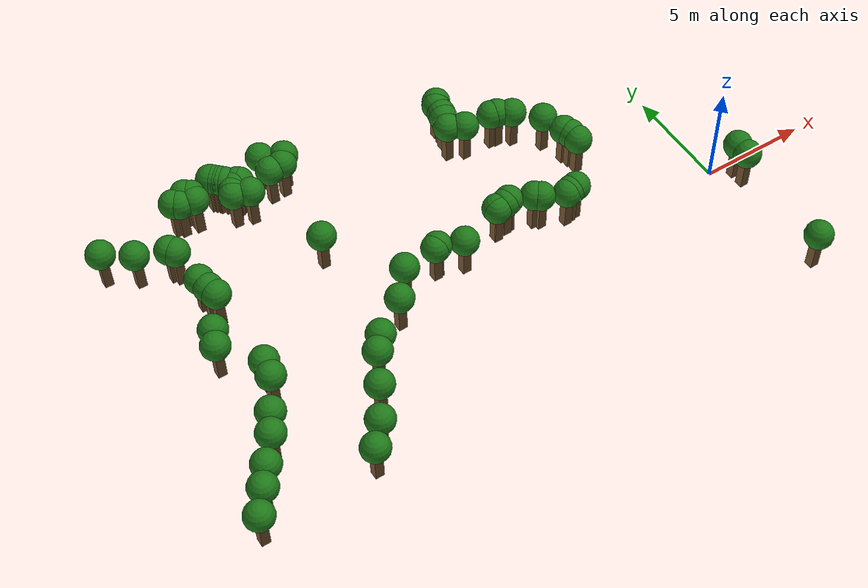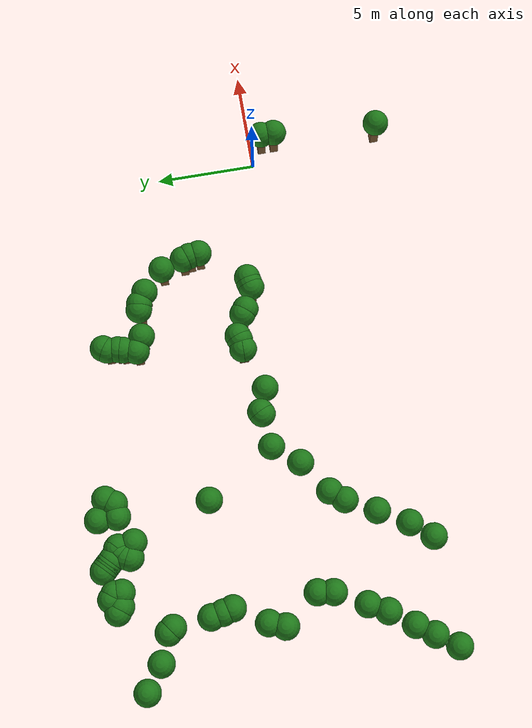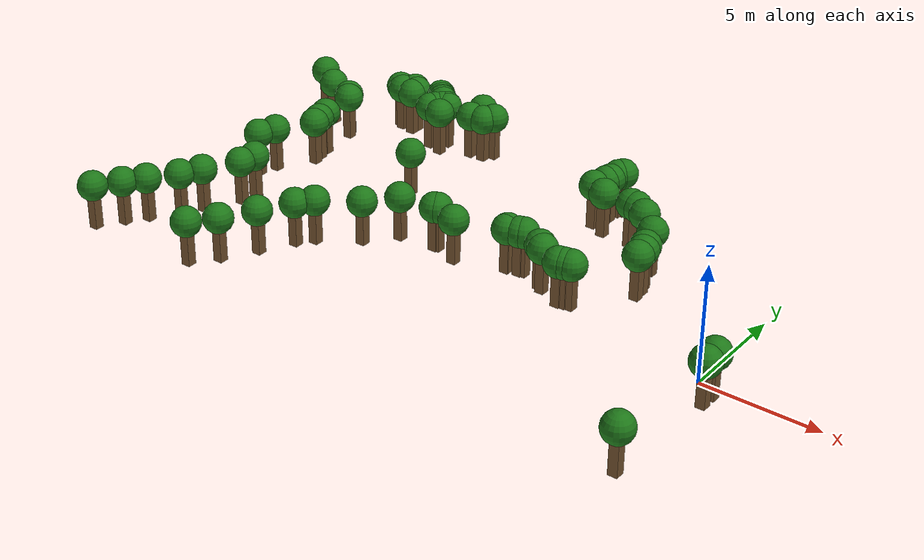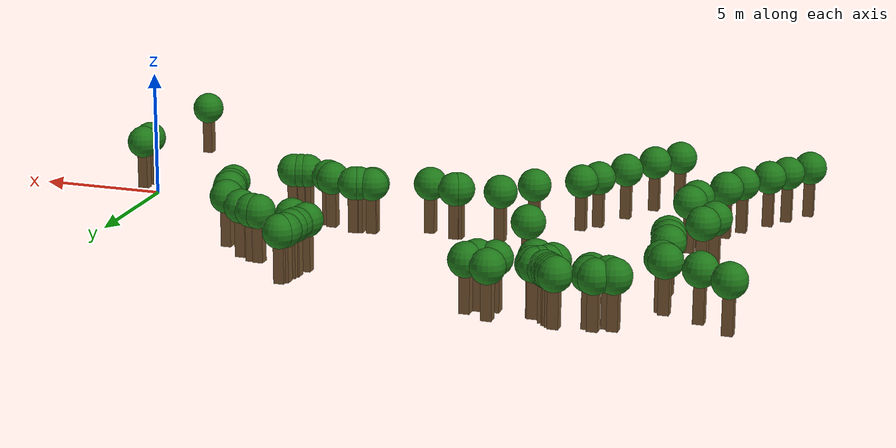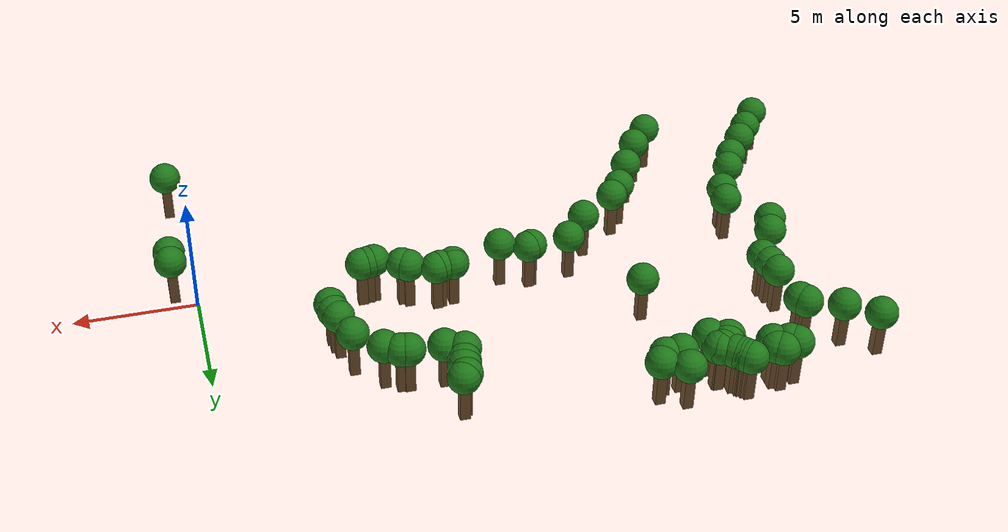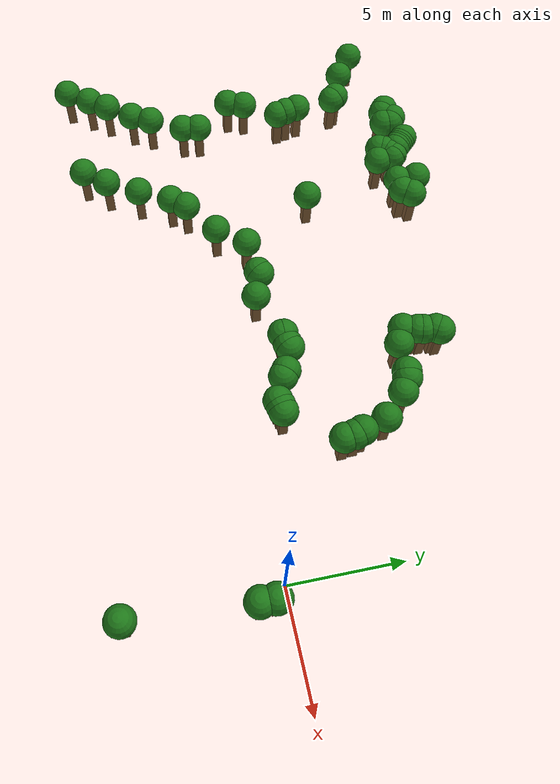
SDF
<sdf version="1.8">
 <model name="bush_trail_nav_walls">
  <static>true</static>
  <link name="trail_wall_151">
   <pose>-19.619 10.352 0.750 0 0 0</pose>
   <collision name="c"><geometry><box><size>0.400 0.400 1.500</size></box></geometry></collision>
   <visual name="v">
    <geometry><box><size>0.400 0.400 1.500</size></box></geometry>
    <material><ambient>0.35 0.25 0.15 1</ambient><diffuse>0.45 0.32 0.18 1</diffuse></material>
   </visual>
   <visual name="leaves">
    <pose>0 0 1.200 0 0 0</pose>
    <geometry><sphere><radius>0.650</radius></sphere></geometry>
    <material><ambient>0.08 0.35 0.08 1</ambient><diffuse>0.12 0.48 0.10 1</diffuse></material>
   </visual>
  </link>
  <link name="trail_wall_152">
   <pose>-17.214 10.293 0.750 0 0 0</pose>
   <collision name="c"><geometry><box><size>0.400 0.400 1.500</size></box></geometry></collision>
   <visual name="v">
    <geometry><box><size>0.400 0.400 1.500</size></box></geometry>
    <material><ambient>0.35 0.25 0.15 1</ambient><diffuse>0.45 0.32 0.18 1</diffuse></material>
   </visual>
   <visual name="leaves">
    <pose>0 0 1.200 0 0 0</pose>
    <geometry><sphere><radius>0.650</radius></sphere></geometry>
    <material><ambient>0.08 0.35 0.08 1</ambient><diffuse>0.12 0.48 0.10 1</diffuse></material>
   </visual>
  </link>
  <link name="trail_wall_153">
   <pose>-19.501 10.235 0.750 0 0 0</pose>
   <collision name="c"><geometry><box><size>0.400 0.400 1.500</size></box></geometry></collision>
   <visual name="v">
    <geometry><box><size>0.400 0.400 1.500</size></box></geometry>
    <material><ambient>0.35 0.25 0.15 1</ambient><diffuse>0.45 0.32 0.18 1</diffuse></material>
   </visual>
   <visual name="leaves">
    <pose>0 0 1.200 0 0 0</pose>
    <geometry><sphere><radius>0.650</radius></sphere></geometry>
    <material><ambient>0.08 0.35 0.08 1</ambient><diffuse>0.12 0.48 0.10 1</diffuse></material>
   </visual>
  </link>
  <link name="trail_wall_154">
   <pose>-20.968 10.176 0.750 0 0 0</pose>
   <collision name="c"><geometry><box><size>0.400 0.400 1.500</size></box></geometry></collision>
   <visual name="v">
    <geometry><box><size>0.400 0.400 1.500</size></box></geometry>
    <material><ambient>0.35 0.25 0.15 1</ambient><diffuse>0.45 0.32 0.18 1</diffuse></material>
   </visual>
   <visual name="leaves">
    <pose>0 0 1.200 0 0 0</pose>
    <geometry><sphere><radius>0.650</radius></sphere></geometry>
    <material><ambient>0.08 0.35 0.08 1</ambient><diffuse>0.12 0.48 0.10 1</diffuse></material>
   </visual>
  </link>
  <link name="trail_wall_155">
   <pose>-19.384 10.117 0.750 0 0 0</pose>
   <collision name="c"><geometry><box><size>0.400 0.400 1.500</size></box></geometry></collision>
   <visual name="v">
    <geometry><box><size>0.400 0.400 1.500</size></box></geometry>
    <material><ambient>0.35 0.25 0.15 1</ambient><diffuse>0.45 0.32 0.18 1</diffuse></material>
   </visual>
   <visual name="leaves">
    <pose>0 0 1.200 0 0 0</pose>
    <geometry><sphere><radius>0.650</radius></sphere></geometry>
    <material><ambient>0.08 0.35 0.08 1</ambient><diffuse>0.12 0.48 0.10 1</diffuse></material>
   </visual>
  </link>
  <link name="trail_wall_156">
   <pose>-19.326 10.059 0.750 0 0 0</pose>
   <collision name="c"><geometry><box><size>0.400 0.400 1.500</size></box></geometry></collision>
   <visual name="v">
    <geometry><box><size>0.400 0.400 1.500</size></box></geometry>
    <material><ambient>0.35 0.25 0.15 1</ambient><diffuse>0.45 0.32 0.18 1</diffuse></material>
   </visual>
   <visual name="leaves">
    <pose>0 0 1.200 0 0 0</pose>
    <geometry><sphere><radius>0.650</radius></sphere></geometry>
    <material><ambient>0.08 0.35 0.08 1</ambient><diffuse>0.12 0.48 0.10 1</diffuse></material>
   </visual>
  </link>
  <link name="trail_wall_157">
   <pose>-20.733 10.000 0.750 0 0 0</pose>
   <collision name="c"><geometry><box><size>0.400 0.400 1.500</size></box></geometry></collision>
   <visual name="v">
    <geometry><box><size>0.400 0.400 1.500</size></box></geometry>
    <material><ambient>0.35 0.25 0.15 1</ambient><diffuse>0.45 0.32 0.18 1</diffuse></material>
   </visual>
   <visual name="leaves">
    <pose>0 0 1.200 0 0 0</pose>
    <geometry><sphere><radius>0.650</radius></sphere></geometry>
    <material><ambient>0.08 0.35 0.08 1</ambient><diffuse>0.12 0.48 0.10 1</diffuse></material>
   </visual>
  </link>
  <link name="trail_wall_158">
   <pose>-21.613 9.941 0.750 0 0 0</pose>
   <collision name="c"><geometry><box><size>0.400 0.400 1.500</size></box></geometry></collision>
   <visual name="v">
    <geometry><box><size>0.400 0.400 1.500</size></box></geometry>
    <material><ambient>0.35 0.25 0.15 1</ambient><diffuse>0.45 0.32 0.18 1</diffuse></material>
   </visual>
   <visual name="leaves">
    <pose>0 0 1.200 0 0 0</pose>
    <geometry><sphere><radius>0.650</radius></sphere></geometry>
    <material><ambient>0.08 0.35 0.08 1</ambient><diffuse>0.12 0.48 0.10 1</diffuse></material>
   </visual>
  </link>
  <link name="trail_wall_159">
   <pose>-19.150 9.883 0.750 0 0 0</pose>
   <collision name="c"><geometry><box><size>0.400 0.400 1.500</size></box></geometry></collision>
   <visual name="v">
    <geometry><box><size>0.400 0.400 1.500</size></box></geometry>
    <material><ambient>0.35 0.25 0.15 1</ambient><diffuse>0.45 0.32 0.18 1</diffuse></material>
   </visual>
   <visual name="leaves">
    <pose>0 0 1.200 0 0 0</pose>
    <geometry><sphere><radius>0.650</radius></sphere></geometry>
    <material><ambient>0.08 0.35 0.08 1</ambient><diffuse>0.12 0.48 0.10 1</diffuse></material>
   </visual>
  </link>
  <link name="trail_wall_160">
   <pose>-16.276 9.824 0.750 0 0 0</pose>
   <collision name="c"><geometry><box><size>0.400 0.400 1.500</size></box></geometry></collision>
   <visual name="v">
    <geometry><box><size>0.400 0.400 1.500</size></box></geometry>
    <material><ambient>0.35 0.25 0.15 1</ambient><diffuse>0.45 0.32 0.18 1</diffuse></material>
   </visual>
   <visual name="leaves">
    <pose>0 0 1.200 0 0 0</pose>
    <geometry><sphere><radius>0.650</radius></sphere></geometry>
    <material><ambient>0.08 0.35 0.08 1</ambient><diffuse>0.12 0.48 0.10 1</diffuse></material>
   </visual>
  </link>
  <link name="trail_wall_161">
   <pose>-21.378 9.765 0.750 0 0 0</pose>
   <collision name="c"><geometry><box><size>0.400 0.400 1.500</size></box></geometry></collision>
   <visual name="v">
    <geometry><box><size>0.400 0.400 1.500</size></box></geometry>
    <material><ambient>0.35 0.25 0.15 1</ambient><diffuse>0.45 0.32 0.18 1</diffuse></material>
   </visual>
   <visual name="leaves">
    <pose>0 0 1.200 0 0 0</pose>
    <geometry><sphere><radius>0.650</radius></sphere></geometry>
    <material><ambient>0.08 0.35 0.08 1</ambient><diffuse>0.12 0.48 0.10 1</diffuse></material>
   </visual>
  </link>
  <link name="trail_wall_164">
   <pose>-20.733 9.648 0.750 0 0 0</pose>
   <collision name="c"><geometry><box><size>0.400 0.400 1.500</size></box></geometry></collision>
   <visual name="v">
    <geometry><box><size>0.400 0.400 1.500</size></box></geometry>
    <material><ambient>0.35 0.25 0.15 1</ambient><diffuse>0.45 0.32 0.18 1</diffuse></material>
   </visual>
   <visual name="leaves">
    <pose>0 0 1.200 0 0 0</pose>
    <geometry><sphere><radius>0.650</radius></sphere></geometry>
    <material><ambient>0.08 0.35 0.08 1</ambient><diffuse>0.12 0.48 0.10 1</diffuse></material>
   </visual>
  </link>
  <link name="trail_wall_165">
   <pose>-18.680 9.589 0.750 0 0 0</pose>
   <collision name="c"><geometry><box><size>0.400 0.400 1.500</size></box></geometry></collision>
   <visual name="v">
    <geometry><box><size>0.400 0.400 1.500</size></box></geometry>
    <material><ambient>0.35 0.25 0.15 1</ambient><diffuse>0.45 0.32 0.18 1</diffuse></material>
   </visual>
   <visual name="leaves">
    <pose>0 0 1.200 0 0 0</pose>
    <geometry><sphere><radius>0.650</radius></sphere></geometry>
    <material><ambient>0.08 0.35 0.08 1</ambient><diffuse>0.12 0.48 0.10 1</diffuse></material>
   </visual>
  </link>
  <link name="trail_wall_166">
   <pose>-18.622 9.531 0.750 0 0 0</pose>
   <collision name="c"><geometry><box><size>0.400 0.400 1.500</size></box></geometry></collision>
   <visual name="v">
    <geometry><box><size>0.400 0.400 1.500</size></box></geometry>
    <material><ambient>0.35 0.25 0.15 1</ambient><diffuse>0.45 0.32 0.18 1</diffuse></material>
   </visual>
   <visual name="leaves">
    <pose>0 0 1.200 0 0 0</pose>
    <geometry><sphere><radius>0.650</radius></sphere></geometry>
    <material><ambient>0.08 0.35 0.08 1</ambient><diffuse>0.12 0.48 0.10 1</diffuse></material>
   </visual>
  </link>
  <link name="trail_wall_167">
   <pose>-18.856 9.472 0.750 0 0 0</pose>
   <collision name="c"><geometry><box><size>0.400 0.400 1.500</size></box></geometry></collision>
   <visual name="v">
    <geometry><box><size>0.400 0.400 1.500</size></box></geometry>
    <material><ambient>0.35 0.25 0.15 1</ambient><diffuse>0.45 0.32 0.18 1</diffuse></material>
   </visual>
   <visual name="leaves">
    <pose>0 0 1.200 0 0 0</pose>
    <geometry><sphere><radius>0.650</radius></sphere></geometry>
    <material><ambient>0.08 0.35 0.08 1</ambient><diffuse>0.12 0.48 0.10 1</diffuse></material>
   </visual>
  </link>
  <link name="trail_wall_169">
   <pose>-16.569 9.413 0.750 0 0 0</pose>
   <collision name="c"><geometry><box><size>0.400 0.400 1.500</size></box></geometry></collision>
   <visual name="v">
    <geometry><box><size>0.400 0.400 1.500</size></box></geometry>
    <material><ambient>0.35 0.25 0.15 1</ambient><diffuse>0.45 0.32 0.18 1</diffuse></material>
   </visual>
   <visual name="leaves">
    <pose>0 0 1.200 0 0 0</pose>
    <geometry><sphere><radius>0.650</radius></sphere></geometry>
    <material><ambient>0.08 0.35 0.08 1</ambient><diffuse>0.12 0.48 0.10 1</diffuse></material>
   </visual>
  </link>
  <link name="trail_wall_170">
   <pose>-17.214 9.355 0.750 0 0 0</pose>
   <collision name="c"><geometry><box><size>0.400 0.400 1.500</size></box></geometry></collision>
   <visual name="v">
    <geometry><box><size>0.400 0.400 1.500</size></box></geometry>
    <material><ambient>0.35 0.25 0.15 1</ambient><diffuse>0.45 0.32 0.18 1</diffuse></material>
   </visual>
   <visual name="leaves">
    <pose>0 0 1.200 0 0 0</pose>
    <geometry><sphere><radius>0.650</radius></sphere></geometry>
    <material><ambient>0.08 0.35 0.08 1</ambient><diffuse>0.12 0.48 0.10 1</diffuse></material>
   </visual>
  </link>
  <link name="trail_wall_171">
   <pose>-19.091 9.238 0.750 0 0 0</pose>
   <collision name="c"><geometry><box><size>0.400 0.400 1.500</size></box></geometry></collision>
   <visual name="v">
    <geometry><box><size>0.400 0.400 1.500</size></box></geometry>
    <material><ambient>0.35 0.25 0.15 1</ambient><diffuse>0.45 0.32 0.18 1</diffuse></material>
   </visual>
   <visual name="leaves">
    <pose>0 0 1.200 0 0 0</pose>
    <geometry><sphere><radius>0.650</radius></sphere></geometry>
    <material><ambient>0.08 0.35 0.08 1</ambient><diffuse>0.12 0.48 0.10 1</diffuse></material>
   </visual>
  </link>
  <link name="trail_wall_172">
   <pose>-25.425 9.120 0.750 0 0 0</pose>
   <collision name="c"><geometry><box><size>0.400 0.400 1.500</size></box></geometry></collision>
   <visual name="v">
    <geometry><box><size>0.400 0.400 1.500</size></box></geometry>
    <material><ambient>0.35 0.25 0.15 1</ambient><diffuse>0.45 0.32 0.18 1</diffuse></material>
   </visual>
   <visual name="leaves">
    <pose>0 0 1.200 0 0 0</pose>
    <geometry><sphere><radius>0.650</radius></sphere></geometry>
    <material><ambient>0.08 0.35 0.08 1</ambient><diffuse>0.12 0.48 0.10 1</diffuse></material>
   </visual>
  </link>
  <link name="trail_wall_173">
   <pose>-19.208 9.003 0.750 0 0 0</pose>
   <collision name="c"><geometry><box><size>0.400 0.400 1.500</size></box></geometry></collision>
   <visual name="v">
    <geometry><box><size>0.400 0.400 1.500</size></box></geometry>
    <material><ambient>0.35 0.25 0.15 1</ambient><diffuse>0.45 0.32 0.18 1</diffuse></material>
   </visual>
   <visual name="leaves">
    <pose>0 0 1.200 0 0 0</pose>
    <geometry><sphere><radius>0.650</radius></sphere></geometry>
    <material><ambient>0.08 0.35 0.08 1</ambient><diffuse>0.12 0.48 0.10 1</diffuse></material>
   </visual>
  </link>
  <link name="trail_wall_174">
   <pose>-8.944 8.886 0.750 0 0 0</pose>
   <collision name="c"><geometry><box><size>0.400 0.400 1.500</size></box></geometry></collision>
   <visual name="v">
    <geometry><box><size>0.400 0.400 1.500</size></box></geometry>
    <material><ambient>0.35 0.25 0.15 1</ambient><diffuse>0.45 0.32 0.18 1</diffuse></material>
   </visual>
   <visual name="leaves">
    <pose>0 0 1.200 0 0 0</pose>
    <geometry><sphere><radius>0.650</radius></sphere></geometry>
    <material><ambient>0.08 0.35 0.08 1</ambient><diffuse>0.12 0.48 0.10 1</diffuse></material>
   </visual>
  </link>
  <link name="trail_wall_175">
   <pose>-18.504 8.768 0.750 0 0 0</pose>
   <collision name="c"><geometry><box><size>0.400 0.400 1.500</size></box></geometry></collision>
   <visual name="v">
    <geometry><box><size>0.400 0.400 1.500</size></box></geometry>
    <material><ambient>0.35 0.25 0.15 1</ambient><diffuse>0.45 0.32 0.18 1</diffuse></material>
   </visual>
   <visual name="leaves">
    <pose>0 0 1.200 0 0 0</pose>
    <geometry><sphere><radius>0.650</radius></sphere></geometry>
    <material><ambient>0.08 0.35 0.08 1</ambient><diffuse>0.12 0.48 0.10 1</diffuse></material>
   </visual>
  </link>
  <link name="trail_wall_176">
   <pose>-9.062 8.710 0.750 0 0 0</pose>
   <collision name="c"><geometry><box><size>0.400 0.400 1.500</size></box></geometry></collision>
   <visual name="v">
    <geometry><box><size>0.400 0.400 1.500</size></box></geometry>
    <material><ambient>0.35 0.25 0.15 1</ambient><diffuse>0.45 0.32 0.18 1</diffuse></material>
   </visual>
   <visual name="leaves">
    <pose>0 0 1.200 0 0 0</pose>
    <geometry><sphere><radius>0.650</radius></sphere></geometry>
    <material><ambient>0.08 0.35 0.08 1</ambient><diffuse>0.12 0.48 0.10 1</diffuse></material>
   </visual>
  </link>
  <link name="trail_wall_178">
   <pose>-24.252 8.299 0.750 0 0 0</pose>
   <collision name="c"><geometry><box><size>0.400 0.400 1.500</size></box></geometry></collision>
   <visual name="v">
    <geometry><box><size>0.400 0.400 1.500</size></box></geometry>
    <material><ambient>0.35 0.25 0.15 1</ambient><diffuse>0.45 0.32 0.18 1</diffuse></material>
   </visual>
   <visual name="leaves">
    <pose>0 0 1.200 0 0 0</pose>
    <geometry><sphere><radius>0.650</radius></sphere></geometry>
    <material><ambient>0.08 0.35 0.08 1</ambient><diffuse>0.12 0.48 0.10 1</diffuse></material>
   </visual>
  </link>
  <link name="trail_wall_179">
   <pose>-9.120 8.182 0.750 0 0 0</pose>
   <collision name="c"><geometry><box><size>0.400 0.400 1.500</size></box></geometry></collision>
   <visual name="v">
    <geometry><box><size>0.400 0.400 1.500</size></box></geometry>
    <material><ambient>0.35 0.25 0.15 1</ambient><diffuse>0.45 0.32 0.18 1</diffuse></material>
   </visual>
   <visual name="leaves">
    <pose>0 0 1.200 0 0 0</pose>
    <geometry><sphere><radius>0.650</radius></sphere></geometry>
    <material><ambient>0.08 0.35 0.08 1</ambient><diffuse>0.12 0.48 0.10 1</diffuse></material>
   </visual>
  </link>
  <link name="trail_wall_180">
   <pose>-9.179 7.947 0.750 0 0 0</pose>
   <collision name="c"><geometry><box><size>0.400 0.400 1.500</size></box></geometry></collision>
   <visual name="v">
    <geometry><box><size>0.400 0.400 1.500</size></box></geometry>
    <material><ambient>0.35 0.25 0.15 1</ambient><diffuse>0.45 0.32 0.18 1</diffuse></material>
   </visual>
   <visual name="leaves">
    <pose>0 0 1.200 0 0 0</pose>
    <geometry><sphere><radius>0.650</radius></sphere></geometry>
    <material><ambient>0.08 0.35 0.08 1</ambient><diffuse>0.12 0.48 0.10 1</diffuse></material>
   </visual>
  </link>
  <link name="trail_wall_181">
   <pose>-22.903 7.771 0.750 0 0 0</pose>
   <collision name="c"><geometry><box><size>0.400 0.400 1.500</size></box></geometry></collision>
   <visual name="v">
    <geometry><box><size>0.400 0.400 1.500</size></box></geometry>
    <material><ambient>0.35 0.25 0.15 1</ambient><diffuse>0.45 0.32 0.18 1</diffuse></material>
   </visual>
   <visual name="leaves">
    <pose>0 0 1.200 0 0 0</pose>
    <geometry><sphere><radius>0.650</radius></sphere></geometry>
    <material><ambient>0.08 0.35 0.08 1</ambient><diffuse>0.12 0.48 0.10 1</diffuse></material>
   </visual>
  </link>
  <link name="trail_wall_182">
   <pose>-22.727 7.537 0.750 0 0 0</pose>
   <collision name="c"><geometry><box><size>0.400 0.400 1.500</size></box></geometry></collision>
   <visual name="v">
    <geometry><box><size>0.400 0.400 1.500</size></box></geometry>
    <material><ambient>0.35 0.25 0.15 1</ambient><diffuse>0.45 0.32 0.18 1</diffuse></material>
   </visual>
   <visual name="leaves">
    <pose>0 0 1.200 0 0 0</pose>
    <geometry><sphere><radius>0.650</radius></sphere></geometry>
    <material><ambient>0.08 0.35 0.08 1</ambient><diffuse>0.12 0.48 0.10 1</diffuse></material>
   </visual>
  </link>
  <link name="trail_wall_183">
   <pose>-9.355 7.302 0.750 0 0 0</pose>
   <collision name="c"><geometry><box><size>0.400 0.400 1.500</size></box></geometry></collision>
   <visual name="v">
    <geometry><box><size>0.400 0.400 1.500</size></box></geometry>
    <material><ambient>0.35 0.25 0.15 1</ambient><diffuse>0.45 0.32 0.18 1</diffuse></material>
   </visual>
   <visual name="leaves">
    <pose>0 0 1.200 0 0 0</pose>
    <geometry><sphere><radius>0.650</radius></sphere></geometry>
    <material><ambient>0.08 0.35 0.08 1</ambient><diffuse>0.12 0.48 0.10 1</diffuse></material>
   </visual>
  </link>
  <link name="trail_wall_185">
   <pose>-8.651 6.950 0.750 0 0 0</pose>
   <collision name="c"><geometry><box><size>0.400 0.400 1.500</size></box></geometry></collision>
   <visual name="v">
    <geometry><box><size>0.400 0.400 1.500</size></box></geometry>
    <material><ambient>0.35 0.25 0.15 1</ambient><diffuse>0.45 0.32 0.18 1</diffuse></material>
   </visual>
   <visual name="leaves">
    <pose>0 0 1.200 0 0 0</pose>
    <geometry><sphere><radius>0.650</radius></sphere></geometry>
    <material><ambient>0.08 0.35 0.08 1</ambient><diffuse>0.12 0.48 0.10 1</diffuse></material>
   </visual>
  </link>
  <link name="trail_wall_186">
   <pose>-7.302 6.891 0.750 0 0 0</pose>
   <collision name="c"><geometry><box><size>0.400 0.400 1.500</size></box></geometry></collision>
   <visual name="v">
    <geometry><box><size>0.400 0.400 1.500</size></box></geometry>
    <material><ambient>0.35 0.25 0.15 1</ambient><diffuse>0.45 0.32 0.18 1</diffuse></material>
   </visual>
   <visual name="leaves">
    <pose>0 0 1.200 0 0 0</pose>
    <geometry><sphere><radius>0.650</radius></sphere></geometry>
    <material><ambient>0.08 0.35 0.08 1</ambient><diffuse>0.12 0.48 0.10 1</diffuse></material>
   </visual>
  </link>
  <link name="trail_wall_187">
   <pose>-7.009 6.833 0.750 0 0 0</pose>
   <collision name="c"><geometry><box><size>0.400 0.400 1.500</size></box></geometry></collision>
   <visual name="v">
    <geometry><box><size>0.400 0.400 1.500</size></box></geometry>
    <material><ambient>0.35 0.25 0.15 1</ambient><diffuse>0.45 0.32 0.18 1</diffuse></material>
   </visual>
   <visual name="leaves">
    <pose>0 0 1.200 0 0 0</pose>
    <geometry><sphere><radius>0.650</radius></sphere></geometry>
    <material><ambient>0.08 0.35 0.08 1</ambient><diffuse>0.12 0.48 0.10 1</diffuse></material>
   </visual>
  </link>
  <link name="trail_wall_189">
   <pose>-6.422 6.481 0.750 0 0 0</pose>
   <collision name="c"><geometry><box><size>0.400 0.400 1.500</size></box></geometry></collision>
   <visual name="v">
    <geometry><box><size>0.400 0.400 1.500</size></box></geometry>
    <material><ambient>0.35 0.25 0.15 1</ambient><diffuse>0.45 0.32 0.18 1</diffuse></material>
   </visual>
   <visual name="leaves">
    <pose>0 0 1.200 0 0 0</pose>
    <geometry><sphere><radius>0.650</radius></sphere></geometry>
    <material><ambient>0.08 0.35 0.08 1</ambient><diffuse>0.12 0.48 0.10 1</diffuse></material>
   </visual>
  </link>
  <link name="trail_wall_192">
   <pose>-22.551 5.718 0.750 0 0 0</pose>
   <collision name="c"><geometry><box><size>0.400 0.400 1.500</size></box></geometry></collision>
   <visual name="v">
    <geometry><box><size>0.400 0.400 1.500</size></box></geometry>
    <material><ambient>0.35 0.25 0.15 1</ambient><diffuse>0.45 0.32 0.18 1</diffuse></material>
   </visual>
   <visual name="leaves">
    <pose>0 0 1.200 0 0 0</pose>
    <geometry><sphere><radius>0.650</radius></sphere></geometry>
    <material><ambient>0.08 0.35 0.08 1</ambient><diffuse>0.12 0.48 0.10 1</diffuse></material>
   </visual>
  </link>
  <link name="trail_wall_193">
   <pose>-5.425 5.484 0.750 0 0 0</pose>
   <collision name="c"><geometry><box><size>0.400 0.400 1.500</size></box></geometry></collision>
   <visual name="v">
    <geometry><box><size>0.400 0.400 1.500</size></box></geometry>
    <material><ambient>0.35 0.25 0.15 1</ambient><diffuse>0.45 0.32 0.18 1</diffuse></material>
   </visual>
   <visual name="leaves">
    <pose>0 0 1.200 0 0 0</pose>
    <geometry><sphere><radius>0.650</radius></sphere></geometry>
    <material><ambient>0.08 0.35 0.08 1</ambient><diffuse>0.12 0.48 0.10 1</diffuse></material>
   </visual>
  </link>
  <link name="trail_wall_196">
   <pose>-22.434 5.132 0.750 0 0 0</pose>
   <collision name="c"><geometry><box><size>0.400 0.400 1.500</size></box></geometry></collision>
   <visual name="v">
    <geometry><box><size>0.400 0.400 1.500</size></box></geometry>
    <material><ambient>0.35 0.25 0.15 1</ambient><diffuse>0.45 0.32 0.18 1</diffuse></material>
   </visual>
   <visual name="leaves">
    <pose>0 0 1.200 0 0 0</pose>
    <geometry><sphere><radius>0.650</radius></sphere></geometry>
    <material><ambient>0.08 0.35 0.08 1</ambient><diffuse>0.12 0.48 0.10 1</diffuse></material>
   </visual>
  </link>
  <link name="trail_wall_198">
   <pose>-17.155 4.956 0.750 0 0 0</pose>
   <collision name="c"><geometry><box><size>0.400 0.400 1.500</size></box></geometry></collision>
   <visual name="v">
    <geometry><box><size>0.400 0.400 1.500</size></box></geometry>
    <material><ambient>0.35 0.25 0.15 1</ambient><diffuse>0.45 0.32 0.18 1</diffuse></material>
   </visual>
   <visual name="leaves">
    <pose>0 0 1.200 0 0 0</pose>
    <geometry><sphere><radius>0.650</radius></sphere></geometry>
    <material><ambient>0.08 0.35 0.08 1</ambient><diffuse>0.12 0.48 0.10 1</diffuse></material>
   </visual>
  </link>
  <link name="trail_wall_200">
   <pose>-22.317 4.663 0.750 0 0 0</pose>
   <collision name="c"><geometry><box><size>0.400 0.400 1.500</size></box></geometry></collision>
   <visual name="v">
    <geometry><box><size>0.400 0.400 1.500</size></box></geometry>
    <material><ambient>0.35 0.25 0.15 1</ambient><diffuse>0.45 0.32 0.18 1</diffuse></material>
   </visual>
   <visual name="leaves">
    <pose>0 0 1.200 0 0 0</pose>
    <geometry><sphere><radius>0.650</radius></sphere></geometry>
    <material><ambient>0.08 0.35 0.08 1</ambient><diffuse>0.12 0.48 0.10 1</diffuse></material>
   </visual>
  </link>
  <link name="trail_wall_202">
   <pose>-5.073 4.370 0.750 0 0 0</pose>
   <collision name="c"><geometry><box><size>0.400 0.400 1.500</size></box></geometry></collision>
   <visual name="v">
    <geometry><box><size>0.400 0.400 1.500</size></box></geometry>
    <material><ambient>0.35 0.25 0.15 1</ambient><diffuse>0.45 0.32 0.18 1</diffuse></material>
   </visual>
   <visual name="leaves">
    <pose>0 0 1.200 0 0 0</pose>
    <geometry><sphere><radius>0.650</radius></sphere></geometry>
    <material><ambient>0.08 0.35 0.08 1</ambient><diffuse>0.12 0.48 0.10 1</diffuse></material>
   </visual>
  </link>
  <link name="trail_wall_205">
   <pose>-4.956 4.018 0.750 0 0 0</pose>
   <collision name="c"><geometry><box><size>0.400 0.400 1.500</size></box></geometry></collision>
   <visual name="v">
    <geometry><box><size>0.400 0.400 1.500</size></box></geometry>
    <material><ambient>0.35 0.25 0.15 1</ambient><diffuse>0.45 0.32 0.18 1</diffuse></material>
   </visual>
   <visual name="leaves">
    <pose>0 0 1.200 0 0 0</pose>
    <geometry><sphere><radius>0.650</radius></sphere></geometry>
    <material><ambient>0.08 0.35 0.08 1</ambient><diffuse>0.12 0.48 0.10 1</diffuse></material>
   </visual>
  </link>
  <link name="trail_wall_208">
   <pose>-4.897 3.548 0.750 0 0 0</pose>
   <collision name="c"><geometry><box><size>0.400 0.400 1.500</size></box></geometry></collision>
   <visual name="v">
    <geometry><box><size>0.400 0.400 1.500</size></box></geometry>
    <material><ambient>0.35 0.25 0.15 1</ambient><diffuse>0.45 0.32 0.18 1</diffuse></material>
   </visual>
   <visual name="leaves">
    <pose>0 0 1.200 0 0 0</pose>
    <geometry><sphere><radius>0.650</radius></sphere></geometry>
    <material><ambient>0.08 0.35 0.08 1</ambient><diffuse>0.12 0.48 0.10 1</diffuse></material>
   </visual>
  </link>
  <link name="trail_wall_211">
   <pose>-23.255 3.138 0.750 0 0 0</pose>
   <collision name="c"><geometry><box><size>0.400 0.400 1.500</size></box></geometry></collision>
   <visual name="v">
    <geometry><box><size>0.400 0.400 1.500</size></box></geometry>
    <material><ambient>0.35 0.25 0.15 1</ambient><diffuse>0.45 0.32 0.18 1</diffuse></material>
   </visual>
   <visual name="leaves">
    <pose>0 0 1.200 0 0 0</pose>
    <geometry><sphere><radius>0.650</radius></sphere></geometry>
    <material><ambient>0.08 0.35 0.08 1</ambient><diffuse>0.12 0.48 0.10 1</diffuse></material>
   </visual>
  </link>
  <link name="trail_wall_216">
   <pose>-23.548 2.375 0.750 0 0 0</pose>
   <collision name="c"><geometry><box><size>0.400 0.400 1.500</size></box></geometry></collision>
   <visual name="v">
    <geometry><box><size>0.400 0.400 1.500</size></box></geometry>
    <material><ambient>0.35 0.25 0.15 1</ambient><diffuse>0.45 0.32 0.18 1</diffuse></material>
   </visual>
   <visual name="leaves">
    <pose>0 0 1.200 0 0 0</pose>
    <geometry><sphere><radius>0.650</radius></sphere></geometry>
    <material><ambient>0.08 0.35 0.08 1</ambient><diffuse>0.12 0.48 0.10 1</diffuse></material>
   </visual>
  </link>
  <link name="trail_wall_217">
   <pose>-9.413 2.317 0.750 0 0 0</pose>
   <collision name="c"><geometry><box><size>0.400 0.400 1.500</size></box></geometry></collision>
   <visual name="v">
    <geometry><box><size>0.400 0.400 1.500</size></box></geometry>
    <material><ambient>0.35 0.25 0.15 1</ambient><diffuse>0.45 0.32 0.18 1</diffuse></material>
   </visual>
   <visual name="leaves">
    <pose>0 0 1.200 0 0 0</pose>
    <geometry><sphere><radius>0.650</radius></sphere></geometry>
    <material><ambient>0.08 0.35 0.08 1</ambient><diffuse>0.12 0.48 0.10 1</diffuse></material>
   </visual>
  </link>
  <link name="trail_wall_218">
   <pose>-9.589 2.258 0.750 0 0 0</pose>
   <collision name="c"><geometry><box><size>0.400 0.400 1.500</size></box></geometry></collision>
   <visual name="v">
    <geometry><box><size>0.400 0.400 1.500</size></box></geometry>
    <material><ambient>0.35 0.25 0.15 1</ambient><diffuse>0.45 0.32 0.18 1</diffuse></material>
   </visual>
   <visual name="leaves">
    <pose>0 0 1.200 0 0 0</pose>
    <geometry><sphere><radius>0.650</radius></sphere></geometry>
    <material><ambient>0.08 0.35 0.08 1</ambient><diffuse>0.12 0.48 0.10 1</diffuse></material>
   </visual>
  </link>
  <link name="trail_wall_219">
   <pose>-10.117 2.199 0.750 0 0 0</pose>
   <collision name="c"><geometry><box><size>0.400 0.400 1.500</size></box></geometry></collision>
   <visual name="v">
    <geometry><box><size>0.400 0.400 1.500</size></box></geometry>
    <material><ambient>0.35 0.25 0.15 1</ambient><diffuse>0.45 0.32 0.18 1</diffuse></material>
   </visual>
   <visual name="leaves">
    <pose>0 0 1.200 0 0 0</pose>
    <geometry><sphere><radius>0.650</radius></sphere></geometry>
    <material><ambient>0.08 0.35 0.08 1</ambient><diffuse>0.12 0.48 0.10 1</diffuse></material>
   </visual>
  </link>
  <link name="trail_wall_220">
   <pose>-10.117 2.141 0.750 0 0 0</pose>
   <collision name="c"><geometry><box><size>0.400 0.400 1.500</size></box></geometry></collision>
   <visual name="v">
    <geometry><box><size>0.400 0.400 1.500</size></box></geometry>
    <material><ambient>0.35 0.25 0.15 1</ambient><diffuse>0.45 0.32 0.18 1</diffuse></material>
   </visual>
   <visual name="leaves">
    <pose>0 0 1.200 0 0 0</pose>
    <geometry><sphere><radius>0.650</radius></sphere></geometry>
    <material><ambient>0.08 0.35 0.08 1</ambient><diffuse>0.12 0.48 0.10 1</diffuse></material>
   </visual>
  </link>
  <link name="trail_wall_223">
   <pose>-8.358 1.906 0.750 0 0 0</pose>
   <collision name="c"><geometry><box><size>0.400 0.400 1.500</size></box></geometry></collision>
   <visual name="v">
    <geometry><box><size>0.400 0.400 1.500</size></box></geometry>
    <material><ambient>0.35 0.25 0.15 1</ambient><diffuse>0.45 0.32 0.18 1</diffuse></material>
   </visual>
   <visual name="leaves">
    <pose>0 0 1.200 0 0 0</pose>
    <geometry><sphere><radius>0.650</radius></sphere></geometry>
    <material><ambient>0.08 0.35 0.08 1</ambient><diffuse>0.12 0.48 0.10 1</diffuse></material>
   </visual>
  </link>
  <link name="trail_wall_224">
   <pose>-13.343 1.848 0.750 0 0 0</pose>
   <collision name="c"><geometry><box><size>0.400 0.400 1.500</size></box></geometry></collision>
   <visual name="v">
    <geometry><box><size>0.400 0.400 1.500</size></box></geometry>
    <material><ambient>0.35 0.25 0.15 1</ambient><diffuse>0.45 0.32 0.18 1</diffuse></material>
   </visual>
   <visual name="leaves">
    <pose>0 0 1.200 0 0 0</pose>
    <geometry><sphere><radius>0.650</radius></sphere></geometry>
    <material><ambient>0.08 0.35 0.08 1</ambient><diffuse>0.12 0.48 0.10 1</diffuse></material>
   </visual>
  </link>
  <link name="trail_wall_225">
   <pose>-13.460 1.789 0.750 0 0 0</pose>
   <collision name="c"><geometry><box><size>0.400 0.400 1.500</size></box></geometry></collision>
   <visual name="v">
    <geometry><box><size>0.400 0.400 1.500</size></box></geometry>
    <material><ambient>0.35 0.25 0.15 1</ambient><diffuse>0.45 0.32 0.18 1</diffuse></material>
   </visual>
   <visual name="leaves">
    <pose>0 0 1.200 0 0 0</pose>
    <geometry><sphere><radius>0.650</radius></sphere></geometry>
    <material><ambient>0.08 0.35 0.08 1</ambient><diffuse>0.12 0.48 0.10 1</diffuse></material>
   </visual>
  </link>
  <link name="trail_wall_226">
   <pose>-8.123 1.730 0.750 0 0 0</pose>
   <collision name="c"><geometry><box><size>0.400 0.400 1.500</size></box></geometry></collision>
   <visual name="v">
    <geometry><box><size>0.400 0.400 1.500</size></box></geometry>
    <material><ambient>0.35 0.25 0.15 1</ambient><diffuse>0.45 0.32 0.18 1</diffuse></material>
   </visual>
   <visual name="leaves">
    <pose>0 0 1.200 0 0 0</pose>
    <geometry><sphere><radius>0.650</radius></sphere></geometry>
    <material><ambient>0.08 0.35 0.08 1</ambient><diffuse>0.12 0.48 0.10 1</diffuse></material>
   </visual>
  </link>
  <link name="trail_wall_227">
   <pose>-15.103 1.613 0.750 0 0 0</pose>
   <collision name="c"><geometry><box><size>0.400 0.400 1.500</size></box></geometry></collision>
   <visual name="v">
    <geometry><box><size>0.400 0.400 1.500</size></box></geometry>
    <material><ambient>0.35 0.25 0.15 1</ambient><diffuse>0.45 0.32 0.18 1</diffuse></material>
   </visual>
   <visual name="leaves">
    <pose>0 0 1.200 0 0 0</pose>
    <geometry><sphere><radius>0.650</radius></sphere></geometry>
    <material><ambient>0.08 0.35 0.08 1</ambient><diffuse>0.12 0.48 0.10 1</diffuse></material>
   </visual>
  </link>
  <link name="trail_wall_229">
   <pose>-12.229 1.437 0.750 0 0 0</pose>
   <collision name="c"><geometry><box><size>0.400 0.400 1.500</size></box></geometry></collision>
   <visual name="v">
    <geometry><box><size>0.400 0.400 1.500</size></box></geometry>
    <material><ambient>0.35 0.25 0.15 1</ambient><diffuse>0.45 0.32 0.18 1</diffuse></material>
   </visual>
   <visual name="leaves">
    <pose>0 0 1.200 0 0 0</pose>
    <geometry><sphere><radius>0.650</radius></sphere></geometry>
    <material><ambient>0.08 0.35 0.08 1</ambient><diffuse>0.12 0.48 0.10 1</diffuse></material>
   </visual>
  </link>
  <link name="trail_wall_230">
   <pose>-6.540 1.378 0.750 0 0 0</pose>
   <collision name="c"><geometry><box><size>0.400 0.400 1.500</size></box></geometry></collision>
   <visual name="v">
    <geometry><box><size>0.400 0.400 1.500</size></box></geometry>
    <material><ambient>0.35 0.25 0.15 1</ambient><diffuse>0.45 0.32 0.18 1</diffuse></material>
   </visual>
   <visual name="leaves">
    <pose>0 0 1.200 0 0 0</pose>
    <geometry><sphere><radius>0.650</radius></sphere></geometry>
    <material><ambient>0.08 0.35 0.08 1</ambient><diffuse>0.12 0.48 0.10 1</diffuse></material>
   </visual>
  </link>
  <link name="trail_wall_231">
   <pose>-6.833 1.320 0.750 0 0 0</pose>
   <collision name="c"><geometry><box><size>0.400 0.400 1.500</size></box></geometry></collision>
   <visual name="v">
    <geometry><box><size>0.400 0.400 1.500</size></box></geometry>
    <material><ambient>0.35 0.25 0.15 1</ambient><diffuse>0.45 0.32 0.18 1</diffuse></material>
   </visual>
   <visual name="leaves">
    <pose>0 0 1.200 0 0 0</pose>
    <geometry><sphere><radius>0.650</radius></sphere></geometry>
    <material><ambient>0.08 0.35 0.08 1</ambient><diffuse>0.12 0.48 0.10 1</diffuse></material>
   </visual>
  </link>
  <link name="trail_wall_232">
   <pose>-7.067 1.261 0.750 0 0 0</pose>
   <collision name="c"><geometry><box><size>0.400 0.400 1.500</size></box></geometry></collision>
   <visual name="v">
    <geometry><box><size>0.400 0.400 1.500</size></box></geometry>
    <material><ambient>0.35 0.25 0.15 1</ambient><diffuse>0.45 0.32 0.18 1</diffuse></material>
   </visual>
   <visual name="leaves">
    <pose>0 0 1.200 0 0 0</pose>
    <geometry><sphere><radius>0.650</radius></sphere></geometry>
    <material><ambient>0.08 0.35 0.08 1</ambient><diffuse>0.12 0.48 0.10 1</diffuse></material>
   </visual>
  </link>
  <link name="trail_wall_237">
   <pose>-22.258 0.674 0.750 0 0 0</pose>
   <collision name="c"><geometry><box><size>0.400 0.400 1.500</size></box></geometry></collision>
   <visual name="v">
    <geometry><box><size>0.400 0.400 1.500</size></box></geometry>
    <material><ambient>0.35 0.25 0.15 1</ambient><diffuse>0.45 0.32 0.18 1</diffuse></material>
   </visual>
   <visual name="leaves">
    <pose>0 0 1.200 0 0 0</pose>
    <geometry><sphere><radius>0.650</radius></sphere></geometry>
    <material><ambient>0.08 0.35 0.08 1</ambient><diffuse>0.12 0.48 0.10 1</diffuse></material>
   </visual>
  </link>
  <link name="trail_wall_239">
   <pose>-16.100 0.381 0.750 0 0 0</pose>
   <collision name="c"><geometry><box><size>0.400 0.400 1.500</size></box></geometry></collision>
   <visual name="v">
    <geometry><box><size>0.400 0.400 1.500</size></box></geometry>
    <material><ambient>0.35 0.25 0.15 1</ambient><diffuse>0.45 0.32 0.18 1</diffuse></material>
   </visual>
   <visual name="leaves">
    <pose>0 0 1.200 0 0 0</pose>
    <geometry><sphere><radius>0.650</radius></sphere></geometry>
    <material><ambient>0.08 0.35 0.08 1</ambient><diffuse>0.12 0.48 0.10 1</diffuse></material>
   </visual>
  </link>
  <link name="trail_wall_242">
   <pose>-22.375 -0.088 0.750 0 0 0</pose>
   <collision name="c"><geometry><box><size>0.400 0.400 1.500</size></box></geometry></collision>
   <visual name="v">
    <geometry><box><size>0.400 0.400 1.500</size></box></geometry>
    <material><ambient>0.35 0.25 0.15 1</ambient><diffuse>0.45 0.32 0.18 1</diffuse></material>
   </visual>
   <visual name="leaves">
    <pose>0 0 1.200 0 0 0</pose>
    <geometry><sphere><radius>0.650</radius></sphere></geometry>
    <material><ambient>0.08 0.35 0.08 1</ambient><diffuse>0.12 0.48 0.10 1</diffuse></material>
   </visual>
  </link>
  <link name="trail_wall_245">
   <pose>0.850 -0.557 0.750 0 0 0</pose>
   <collision name="c"><geometry><box><size>0.400 0.400 1.500</size></box></geometry></collision>
   <visual name="v">
    <geometry><box><size>0.400 0.400 1.500</size></box></geometry>
    <material><ambient>0.35 0.25 0.15 1</ambient><diffuse>0.45 0.32 0.18 1</diffuse></material>
   </visual>
   <visual name="leaves">
    <pose>0 0 1.200 0 0 0</pose>
    <geometry><sphere><radius>0.650</radius></sphere></geometry>
    <material><ambient>0.08 0.35 0.08 1</ambient><diffuse>0.12 0.48 0.10 1</diffuse></material>
   </visual>
  </link>
  <link name="trail_wall_246">
   <pose>-17.683 -0.733 0.750 0 0 0</pose>
   <collision name="c"><geometry><box><size>0.400 0.400 1.500</size></box></geometry></collision>
   <visual name="v">
    <geometry><box><size>0.400 0.400 1.500</size></box></geometry>
    <material><ambient>0.35 0.25 0.15 1</ambient><diffuse>0.45 0.32 0.18 1</diffuse></material>
   </visual>
   <visual name="leaves">
    <pose>0 0 1.200 0 0 0</pose>
    <geometry><sphere><radius>0.650</radius></sphere></geometry>
    <material><ambient>0.08 0.35 0.08 1</ambient><diffuse>0.12 0.48 0.10 1</diffuse></material>
   </visual>
  </link>
  <link name="trail_wall_249">
   <pose>0.850 -1.202 0.750 0 0 0</pose>
   <collision name="c"><geometry><box><size>0.400 0.400 1.500</size></box></geometry></collision>
   <visual name="v">
    <geometry><box><size>0.400 0.400 1.500</size></box></geometry>
    <material><ambient>0.35 0.25 0.15 1</ambient><diffuse>0.45 0.32 0.18 1</diffuse></material>
   </visual>
   <visual name="leaves">
    <pose>0 0 1.200 0 0 0</pose>
    <geometry><sphere><radius>0.650</radius></sphere></geometry>
    <material><ambient>0.08 0.35 0.08 1</ambient><diffuse>0.12 0.48 0.10 1</diffuse></material>
   </visual>
  </link>
  <link name="trail_wall_250">
   <pose>-18.211 -1.378 0.750 0 0 0</pose>
   <collision name="c"><geometry><box><size>0.400 0.400 1.500</size></box></geometry></collision>
   <visual name="v">
    <geometry><box><size>0.400 0.400 1.500</size></box></geometry>
    <material><ambient>0.35 0.25 0.15 1</ambient><diffuse>0.45 0.32 0.18 1</diffuse></material>
   </visual>
   <visual name="leaves">
    <pose>0 0 1.200 0 0 0</pose>
    <geometry><sphere><radius>0.650</radius></sphere></geometry>
    <material><ambient>0.08 0.35 0.08 1</ambient><diffuse>0.12 0.48 0.10 1</diffuse></material>
   </visual>
  </link>
  <link name="trail_wall_251">
   <pose>-23.196 -1.554 0.750 0 0 0</pose>
   <collision name="c"><geometry><box><size>0.400 0.400 1.500</size></box></geometry></collision>
   <visual name="v">
    <geometry><box><size>0.400 0.400 1.500</size></box></geometry>
    <material><ambient>0.35 0.25 0.15 1</ambient><diffuse>0.45 0.32 0.18 1</diffuse></material>
   </visual>
   <visual name="leaves">
    <pose>0 0 1.200 0 0 0</pose>
    <geometry><sphere><radius>0.650</radius></sphere></geometry>
    <material><ambient>0.08 0.35 0.08 1</ambient><diffuse>0.12 0.48 0.10 1</diffuse></material>
   </visual>
  </link>
  <link name="trail_wall_257">
   <pose>-23.666 -2.434 0.750 0 0 0</pose>
   <collision name="c"><geometry><box><size>0.400 0.400 1.500</size></box></geometry></collision>
   <visual name="v">
    <geometry><box><size>0.400 0.400 1.500</size></box></geometry>
    <material><ambient>0.35 0.25 0.15 1</ambient><diffuse>0.45 0.32 0.18 1</diffuse></material>
   </visual>
   <visual name="leaves">
    <pose>0 0 1.200 0 0 0</pose>
    <geometry><sphere><radius>0.650</radius></sphere></geometry>
    <material><ambient>0.08 0.35 0.08 1</ambient><diffuse>0.12 0.48 0.10 1</diffuse></material>
   </visual>
  </link>
  <link name="trail_wall_260">
   <pose>-18.974 -2.786 0.750 0 0 0</pose>
   <collision name="c"><geometry><box><size>0.400 0.400 1.500</size></box></geometry></collision>
   <visual name="v">
    <geometry><box><size>0.400 0.400 1.500</size></box></geometry>
    <material><ambient>0.35 0.25 0.15 1</ambient><diffuse>0.45 0.32 0.18 1</diffuse></material>
   </visual>
   <visual name="leaves">
    <pose>0 0 1.200 0 0 0</pose>
    <geometry><sphere><radius>0.650</radius></sphere></geometry>
    <material><ambient>0.08 0.35 0.08 1</ambient><diffuse>0.12 0.48 0.10 1</diffuse></material>
   </visual>
  </link>
  <link name="trail_wall_265">
   <pose>-24.487 -3.548 0.750 0 0 0</pose>
   <collision name="c"><geometry><box><size>0.400 0.400 1.500</size></box></geometry></collision>
   <visual name="v">
    <geometry><box><size>0.400 0.400 1.500</size></box></geometry>
    <material><ambient>0.35 0.25 0.15 1</ambient><diffuse>0.45 0.32 0.18 1</diffuse></material>
   </visual>
   <visual name="leaves">
    <pose>0 0 1.200 0 0 0</pose>
    <geometry><sphere><radius>0.650</radius></sphere></geometry>
    <material><ambient>0.08 0.35 0.08 1</ambient><diffuse>0.12 0.48 0.10 1</diffuse></material>
   </visual>
  </link>
  <link name="trail_wall_269">
   <pose>-19.795 -4.194 0.750 0 0 0</pose>
   <collision name="c"><geometry><box><size>0.400 0.400 1.500</size></box></geometry></collision>
   <visual name="v">
    <geometry><box><size>0.400 0.400 1.500</size></box></geometry>
    <material><ambient>0.35 0.25 0.15 1</ambient><diffuse>0.45 0.32 0.18 1</diffuse></material>
   </visual>
   <visual name="leaves">
    <pose>0 0 1.200 0 0 0</pose>
    <geometry><sphere><radius>0.650</radius></sphere></geometry>
    <material><ambient>0.08 0.35 0.08 1</ambient><diffuse>0.12 0.48 0.10 1</diffuse></material>
   </visual>
  </link>
  <link name="trail_wall_270">
   <pose>-25.073 -4.370 0.750 0 0 0</pose>
   <collision name="c"><geometry><box><size>0.400 0.400 1.500</size></box></geometry></collision>
   <visual name="v">
    <geometry><box><size>0.400 0.400 1.500</size></box></geometry>
    <material><ambient>0.35 0.25 0.15 1</ambient><diffuse>0.45 0.32 0.18 1</diffuse></material>
   </visual>
   <visual name="leaves">
    <pose>0 0 1.200 0 0 0</pose>
    <geometry><sphere><radius>0.650</radius></sphere></geometry>
    <material><ambient>0.08 0.35 0.08 1</ambient><diffuse>0.12 0.48 0.10 1</diffuse></material>
   </visual>
  </link>
  <link name="trail_wall_275">
   <pose>-20.616 -5.191 0.750 0 0 0</pose>
   <collision name="c"><geometry><box><size>0.400 0.400 1.500</size></box></geometry></collision>
   <visual name="v">
    <geometry><box><size>0.400 0.400 1.500</size></box></geometry>
    <material><ambient>0.35 0.25 0.15 1</ambient><diffuse>0.45 0.32 0.18 1</diffuse></material>
   </visual>
   <visual name="leaves">
    <pose>0 0 1.200 0 0 0</pose>
    <geometry><sphere><radius>0.650</radius></sphere></geometry>
    <material><ambient>0.08 0.35 0.08 1</ambient><diffuse>0.12 0.48 0.10 1</diffuse></material>
   </visual>
  </link>
  <link name="trail_wall_276">
   <pose>-25.777 -5.367 0.750 0 0 0</pose>
   <collision name="c"><geometry><box><size>0.400 0.400 1.500</size></box></geometry></collision>
   <visual name="v">
    <geometry><box><size>0.400 0.400 1.500</size></box></geometry>
    <material><ambient>0.35 0.25 0.15 1</ambient><diffuse>0.45 0.32 0.18 1</diffuse></material>
   </visual>
   <visual name="leaves">
    <pose>0 0 1.200 0 0 0</pose>
    <geometry><sphere><radius>0.650</radius></sphere></geometry>
    <material><ambient>0.08 0.35 0.08 1</ambient><diffuse>0.12 0.48 0.10 1</diffuse></material>
   </visual>
  </link>
  <link name="trail_wall_285">
   <pose>0.499 -6.422 0.750 0 0 0</pose>
   <collision name="c"><geometry><box><size>0.400 0.400 1.500</size></box></geometry></collision>
   <visual name="v">
    <geometry><box><size>0.400 0.400 1.500</size></box></geometry>
    <material><ambient>0.35 0.25 0.15 1</ambient><diffuse>0.45 0.32 0.18 1</diffuse></material>
   </visual>
   <visual name="leaves">
    <pose>0 0 1.200 0 0 0</pose>
    <geometry><sphere><radius>0.650</radius></sphere></geometry>
    <material><ambient>0.08 0.35 0.08 1</ambient><diffuse>0.12 0.48 0.10 1</diffuse></material>
   </visual>
  </link>
 </model>
</sdf>
